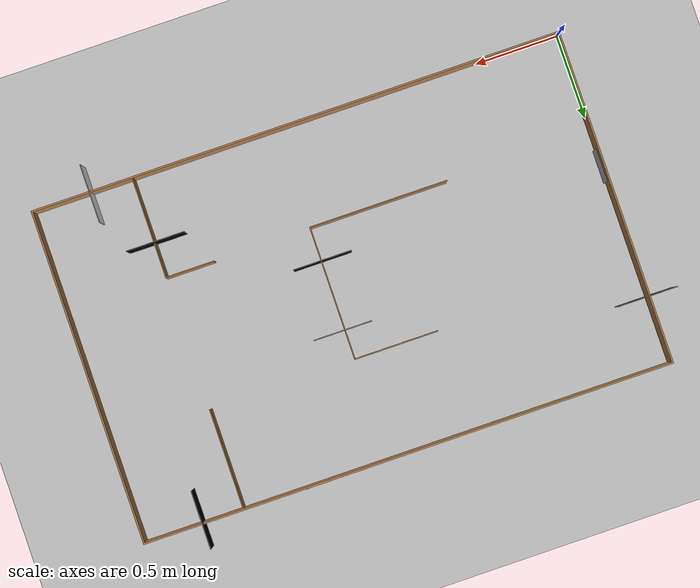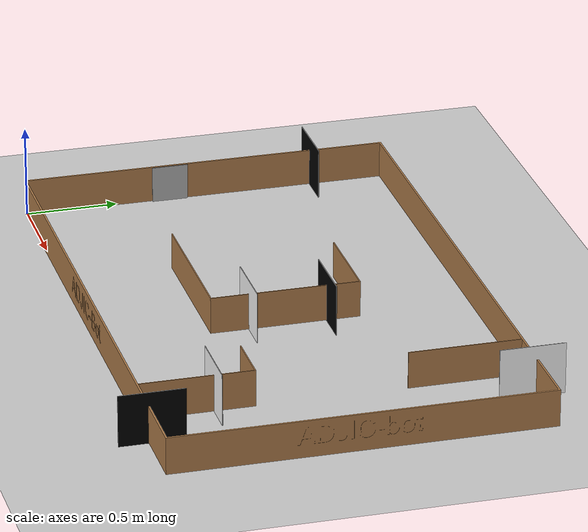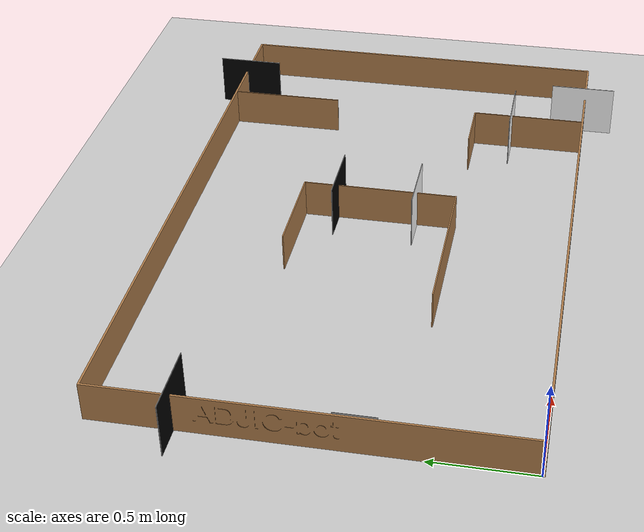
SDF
<sdf version="1.7">
 <world name="default">
  <light name="sun" type="directional">
   <pose>0 0 10 0 -0 0</pose>
   <diffuse>0.8 0.8 0.8 1</diffuse>
   <specular>0.2 0.2 0.2 1</specular>
   <attenuation>
    <range>1000</range>
    <constant>0.9</constant>
    <linear>0.01</linear>
    <quadratic>0.001</quadratic>
   </attenuation>
   <direction>-0.5 0.1 -0.9</direction>
   <spot><inner_angle>0</inner_angle><outer_angle>0</outer_angle><falloff>0</falloff></spot>
  </light>
  <model name="ground_plane">
   <static>1</static>
   <link name="link">
    <collision name="collision">
     <geometry><plane><normal>0 0 1</normal><size>100 100</size></plane></geometry>
     <surface>
      <contact><collide_bitmask>65535</collide_bitmask></contact>
      <friction><ode><mu>100</mu><mu2>50</mu2></ode></friction>
     </surface>
    </collision>
    <visual name="visual">
     <cast_shadows>0</cast_shadows>
     <geometry><plane><normal>0 0 1</normal><size>100 100</size></plane></geometry>
     <material>
      <script><uri>file://media/materials/scripts/gazebo.material</uri><name>Gazebo/Grey</name></script>
     </material>
    </visual>
   </link>
  </model>
  <gravity>0 0 -9.8</gravity>
  <magnetic_field>6e-06 2.3e-05 -4.2e-05</magnetic_field>
  <atmosphere type="adiabatic"/>
  <physics type="ode">
   <max_step_size>0.001</max_step_size>
   <real_time_factor>1</real_time_factor>
   <real_time_update_rate>1000</real_time_update_rate>
  </physics>
  <scene><ambient>0.4 0.4 0.4 1</ambient><background>0.7 0.7 0.7 1</background><shadows>1</shadows></scene>
  <include><uri>model://aruco_marker_0</uri><pose>0.02 0.8 0.1 0 0 0</pose></include>
  <include><uri>model://aruco_marker_1</uri><pose>0.02 1.6 0.1 0 0 0</pose></include>
  <include><uri>model://aruco_marker_2</uri><pose>1.716 0.8 0.1 0 0 3.14159</pose></include>
  <include><uri>model://aruco_marker_3</uri><pose>2.586 0.39 0.1 0 0 3.14159</pose></include>
  <include><uri>model://aruco_marker_4</uri><pose>2.85 0.01 0.1 0 0 1.5708</pose></include>
  <include><uri>model://aruco_marker_5</uri><pose>2.85 1.98 0.1 0 0 -1.5708</pose></include>
  <include><uri>model://aruco_marker_6</uri><pose>1.735 1.22 0.1 0 0 0</pose></include>
  <spherical_coordinates>
   <surface_model>EARTH_WGS84</surface_model>
   <latitude_deg>0</latitude_deg>
   <longitude_deg>0</longitude_deg>
   <elevation>0</elevation>
   <heading_deg>0</heading_deg>
  </spherical_coordinates>
  <model name="simulation_map">
   <static>1</static>
   <pose>0 2.0 0 0 -0 0</pose>
   <link name="walls">
    <collision name="collision">
     <geometry><mesh><uri>model://map_test/meshes/Mapa_pista_ADJIC v4.dae</uri></mesh></geometry>
     <surface><friction><ode><mu>0.6</mu><mu2>0.6</mu2></ode></friction></surface>
    </collision>
    <visual name="visual">
     <geometry><mesh><uri>model://map_test/meshes/Mapa_pista_ADJIC v4.dae</uri></mesh></geometry>
     <material>
      <script><uri>file://media/materials/scripts/gazebo.material</uri><name>Gazebo/Wood</name></script>
     </material>
     <cast_shadows>0</cast_shadows>
    </visual>
   </link>
  </model>
 </world>
</sdf>

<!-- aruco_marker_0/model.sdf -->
<sdf version='1.6'>
  <model name='aruco_marker_0'>
    <link name='link_0'>
      <pose frame=''>0 0 0 0 -0 0</pose>
      <inertial>
        <mass>1</mass>
        <inertia>
          <ixx>0</ixx>
          <ixy>0</ixy>
          <ixz>0</ixz>
          <iyy>0</iyy>
          <iyz>0</iyz>
          <izz>0</izz>
        </inertia>
      </inertial>
      <visual name='visual'>
        <pose frame=''>0 0 0 0 -0 0</pose>
        <geometry>
          <mesh>
            <uri>file://isr-testbed/aruco_marker_0/aruco_marker_0.dae</uri>
            <scale>0.1 0.1 0.1</scale>
          </mesh>
        </geometry>
        <material>
          <lighting>1</lighting>
          <script>
            <uri>file://media/materials/scripts/gazebo.material</uri>
            <name>Gazebo/DepthMapVS</name>
          </script>
          <ambient>0.3 0.3 0.3 1</ambient>
          <diffuse>0.7 0.7 0.7 1</diffuse>
          <specular>0.01 0.01 0.01 1</specular>
          <emissive>0 0 0 1</emissive>
        </material>
        <transparency>0</transparency>
        <cast_shadows>1</cast_shadows>
      </visual>
      <collision name='collision'>
        <laser_retro>0</laser_retro>
        <max_contacts>10</max_contacts>
        <pose frame=''>0 0 0 0 -0 0</pose>
        <geometry>
          <mesh>
            <uri>file://isr-testbed/aruco_marker_0/aruco_marker_0.dae</uri>
            <scale>0.1 0.1 0.1</scale>
          </mesh>
        </geometry>
        <surface>
          <friction>
            <ode>
              <mu>1</mu>
              <mu2>1</mu2>
              <fdir1>0 0 0</fdir1>
              <slip1>0</slip1>
              <slip2>0</slip2>
            </ode>
            <torsional>
              <coefficient>1</coefficient>
              <patch_radius>0</patch_radius>
              <surface_radius>0</surface_radius>
              <use_patch_radius>1</use_patch_radius>
              <ode>
                <slip>0</slip>
              </ode>
            </torsional>
          </friction>
          <bounce>
            <restitution_coefficient>0</restitution_coefficient>
            <threshold>1e+06</threshold>
          </bounce>
          <contact>
            <collide_without_contact>0</collide_without_contact>
            <collide_without_contact_bitmask>1</collide_without_contact_bitmask>
            <collide_bitmask>1</collide_bitmask>
            <ode>
              <soft_cfm>0</soft_cfm>
              <soft_erp>0.2</soft_erp>
              <kp>1e+13</kp>
              <kd>1</kd>
              <max_vel>0.01</max_vel>
              <min_depth>0</min_depth>
            </ode>
            <bullet>
              <split_impulse>1</split_impulse>
              <split_impulse_penetration_threshold>-0.01</split_impulse_penetration_threshold>
              <soft_cfm>0</soft_cfm>
              <soft_erp>0.2</soft_erp>
              <kp>1e+13</kp>
              <kd>1</kd>
            </bullet>
          </contact>
        </surface>
      </collision>
    </link>
    <static>1</static>
    <allow_auto_disable>1</allow_auto_disable>
  </model>
</sdf>

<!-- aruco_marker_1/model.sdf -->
<sdf version="1.9">
  <model name="aruco_marker_1">
    <static>true</static>

    <link name="link">
      <visual name="front">
        <pose>0 0 0 0 0 0</pose>
        <geometry>
          <box>
            <size>0.35 0.002 0.35</size>
          </box>
        </geometry>

        <material>
          <ambient>1 1 1 1</ambient>
          <diffuse>1 1 1 1</diffuse>
          <specular>0.1 0.1 0.1 1</specular>
          <emissive>0 0 0 1</emissive>

          <pbr>
            <metal>
              <albedo_map>
                model://aruco/aruco_marker_1/materials/textures/marker_1.png
              </albedo_map>
              <emissive_map>
                model://aruco/aruco_marker_1/materials/textures/marker_1.png
              </emissive_map>
            </metal>
          </pbr>
        </material>
      </visual>

      <visual name="back">
        <pose>0 -0.002 0 0 0 3.1416</pose>
        <geometry>
          <box>
            <size>0.35 0.002 0.35</size>
          </box>
        </geometry>
        <material>
          <ambient>0 0 0 1</ambient>
          <diffuse>0 0 0 1</diffuse>
        </material>
      </visual>

    </link>

  </model>
</sdf>

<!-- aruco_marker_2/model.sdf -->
<sdf version="1.9">
  <model name="aruco_marker_2">
    <static>true</static>

    <link name="link">
      <visual name="front">
        <pose>0 0 0 0 0 0</pose>
        <geometry>
          <box>
            <size>0.35 0.002 0.35</size>
          </box>
        </geometry>

        <material>
          <ambient>1 1 1 1</ambient>
          <diffuse>1 1 1 1</diffuse>
          <specular>0.1 0.1 0.1 1</specular>
          <emissive>0 0 0 1</emissive>

          <pbr>
            <metal>
              <albedo_map>
                model://aruco/aruco_marker_2/materials/textures/marker_2.png
              </albedo_map>
              <emissive_map>
                model://aruco/aruco_marker_2/materials/textures/marker_2.png
              </emissive_map>
            </metal>
          </pbr>
        </material>
      </visual>

      <visual name="back">
        <pose>0 -0.002 0 0 0 3.1416</pose>
        <geometry>
          <box>
            <size>0.35 0.002 0.35</size>
          </box>
        </geometry>
        <material>
          <ambient>0 0 0 1</ambient>
          <diffuse>0 0 0 1</diffuse>
        </material>
      </visual>

    </link>

  </model>
</sdf>

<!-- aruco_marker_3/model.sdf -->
<sdf version="1.9">
  <model name="aruco_marker_3">
    <static>true</static>

    <link name="link">
      <visual name="front">
        <pose>0 0 0 0 0 0</pose>
        <geometry>
          <box>
            <size>0.35 0.002 0.35</size>
          </box>
        </geometry>

        <material>
          <ambient>1 1 1 1</ambient>
          <diffuse>1 1 1 1</diffuse>
          <specular>0.1 0.1 0.1 1</specular>
          <emissive>0 0 0 1</emissive>

          <pbr>
            <metal>
              <albedo_map>
                model://aruco/aruco_marker_3/materials/textures/marker_3.png
              </albedo_map>
              <emissive_map>
                model://aruco/aruco_marker_3/materials/textures/marker_3.png
              </emissive_map>
            </metal>
          </pbr>
        </material>
      </visual>

      <visual name="back">
        <pose>0 -0.002 0 0 0 3.1416</pose>
        <geometry>
          <box>
            <size>0.35 0.002 0.35</size>
          </box>
        </geometry>
        <material>
          <ambient>0 0 0 1</ambient>
          <diffuse>0 0 0 1</diffuse>
        </material>
      </visual>

    </link>

  </model>
</sdf>

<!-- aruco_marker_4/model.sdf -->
<sdf version="1.9">
  <model name="aruco_marker_4">
    <static>true</static>

    <link name="link">
      <visual name="front">
        <pose>0 0 0 0 0 0</pose>
        <geometry>
          <box>
            <size>0.35 0.002 0.35</size>
          </box>
        </geometry>

        <material>
          <ambient>1 1 1 1</ambient>
          <diffuse>1 1 1 1</diffuse>
          <specular>0.1 0.1 0.1 1</specular>
          <emissive>0 0 0 1</emissive>

          <pbr>
            <metal>
              <albedo_map>
                model://aruco/aruco_marker_4/materials/textures/marker_4.png
              </albedo_map>
              <emissive_map>
                model://aruco/aruco_marker_4/materials/textures/marker_4.png
              </emissive_map>
            </metal>
          </pbr>
        </material>
      </visual>

      <visual name="back">
        <pose>0 -0.002 0 0 0 3.1416</pose>
        <geometry>
          <box>
            <size>0.35 0.002 0.35</size>
          </box>
        </geometry>
        <material>
          <ambient>0 0 0 1</ambient>
          <diffuse>0 0 0 1</diffuse>
        </material>
      </visual>

    </link>

  </model>
</sdf>

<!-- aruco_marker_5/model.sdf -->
<sdf version="1.9">
  <model name="aruco_marker_5">
    <static>true</static>

    <link name="link">
      <visual name="front">
        <pose>0 0 0 0 0 0</pose>
        <geometry>
          <box>
            <size>0.35 0.002 0.35</size>
          </box>
        </geometry>

        <material>
          <ambient>1 1 1 1</ambient>
          <diffuse>1 1 1 1</diffuse>
          <specular>0.1 0.1 0.1 1</specular>
          <emissive>0 0 0 1</emissive>

          <pbr>
            <metal>
              <albedo_map>
                model://aruco/aruco_marker_5/materials/textures/marker_5.png
              </albedo_map>
              <emissive_map>
                model://aruco/aruco_marker_5/materials/textures/marker_5.png
              </emissive_map>
            </metal>
          </pbr>
        </material>
      </visual>

      <visual name="back">
        <pose>0 -0.002 0 0 0 3.1416</pose>
        <geometry>
          <box>
            <size>0.35 0.002 0.35</size>
          </box>
        </geometry>
        <material>
          <ambient>0 0 0 1</ambient>
          <diffuse>0 0 0 1</diffuse>
        </material>
      </visual>

    </link>

  </model>
</sdf>

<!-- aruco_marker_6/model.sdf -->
<sdf version="1.9">
  <model name="aruco_marker_6">
    <static>true</static>

    <link name="link">
      <visual name="front">
        <pose>0 0 0 0 0 0</pose>
        <geometry>
          <box>
            <size>0.35 0.002 0.35</size>
          </box>
        </geometry>

        <material>
          <ambient>1 1 1 1</ambient>
          <diffuse>1 1 1 1</diffuse>
          <specular>0.1 0.1 0.1 1</specular>
          <emissive>0 0 0 1</emissive>

          <pbr>
            <metal>
              <albedo_map>
                model://aruco/aruco_marker_6/materials/textures/marker_6.png
              </albedo_map>
              <emissive_map>
                model://aruco/aruco_marker_6/materials/textures/marker_6.png
              </emissive_map>
            </metal>
          </pbr>
        </material>
      </visual>

      <visual name="back">
        <pose>0 -0.002 0 0 0 3.1416</pose>
        <geometry>
          <box>
            <size>0.35 0.002 0.35</size>
          </box>
        </geometry>
        <material>
          <ambient>0 0 0 1</ambient>
          <diffuse>0 0 0 1</diffuse>
        </material>
      </visual>

    </link>

  </model>
</sdf>
